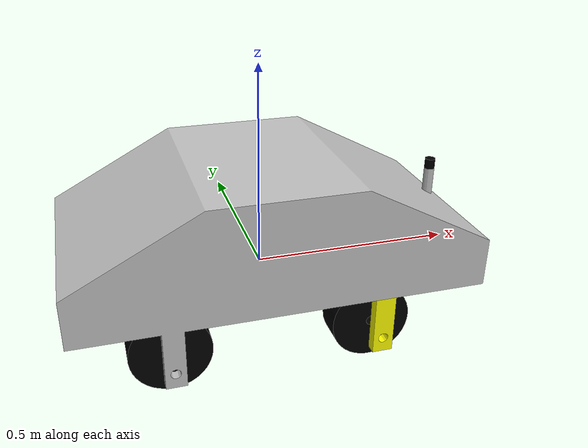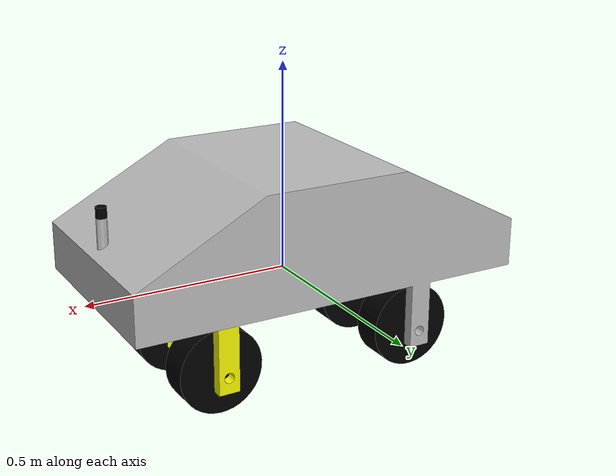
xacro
<?xml version="1.0" ?>
<robot
  name="car_robot" xmlns:xacro="http://ros.org/wiki/xacro">
  <xacro:macro name="body_color">
    <visual>
    <material>
        <ambient>0.5 0.5 0.5 1.0</ambient>
        <diffuse>0.5 0.5 0.5 1.0</diffuse>
        <specular>0.7 0.7 0.7 1.0</specular>
        <emissive>0 0 0 1.0</emissive>
    </material>
    </visual>
  </xacro:macro>
<gazebo reference="base_link">
    <xacro:body_color />
</gazebo>
  <xacro:macro name="fr_wheel_color">
    <visual>
    <material>
        <ambient>0 0 0 1.0</ambient>
        <diffuse>0 0 0 1.0</diffuse>
        <specular>0 0 0 1.0</specular>
        <emissive>0 0 0 1.0</emissive>
    </material>
    </visual>
  </xacro:macro>
<gazebo reference="front-right-wheel">
    <xacro:fr_wheel_color/>
</gazebo>
<xacro:macro name="fl_wheel_color">
    <visual>
    <material>
        <ambient>0 0 0 1.0</ambient>
        <diffuse>0 0 0 1.0</diffuse>
        <specular>0 0 0 1.0</specular>
        <emissive>0 0 0 1.0</emissive>
    </material>
    </visual>
  </xacro:macro>
<gazebo reference="front-left-wheel">
    <xacro:fl_wheel_color/>
</gazebo>
<xacro:macro name="rr_wheel_color">
    <visual>
    <material>
        <ambient>0 0 0 1.0</ambient>
        <diffuse>0 0 0 1.0</diffuse>
        <specular>0 0 0 1.0</specular>
        <emissive>0 0 0 1.0</emissive>
    </material>
    </visual>
  </xacro:macro>
<gazebo reference="rear-right-wheel">
    <xacro:rr_wheel_color/>
</gazebo>
<xacro:macro name="rl_wheel_color">
    <visual>
    <material>
        <ambient>0 0 0 1.0</ambient>
        <diffuse>0 0 0 1.0</diffuse>
        <specular>0 0 0 1.0</specular>
        <emissive>0 0 0 1.0</emissive>
    </material>
    </visual>
  </xacro:macro>
<gazebo reference="rear-left-wheel">
    <xacro:rl_wheel_color/>
</gazebo>
<xacro:macro name="Lidar">
<visual>
    <material>
        <ambient>0 0 0 1.0</ambient>
        <diffuse>0 0 0 1.0</diffuse>
        <specular>0 0 0 1.0</specular>
        <emissive>0 0 0 1.0</emissive>
    </material>
    </visual>
  </xacro:macro>
<gazebo reference="Lidar">
    <xacro:Lidar/>
</gazebo>
  <xacro:macro name="righthinge">
    <visual>
    <material>
        <ambient>0.8 0.558823529411765 0.1 1</ambient>
        <diffuse>0.8 0.558823529411765 0.1 1</diffuse>
        <specular>0.1 0.1 0.1 1</specular>
        <emissive>0 0 0 0</emissive>
    </material>
    </visual>
</xacro:macro>
<gazebo reference="front-right-hinge">
    <xacro:righthinge />
</gazebo>
  <xacro:macro name="left-hinge">
    <visual>
    <material>
        <ambient>0.8 0.558823529411765 0.1 1</ambient>
        <diffuse>0.8 0.558823529411765 0.1 1</diffuse>
        <specular>0.1 0.1 0.1 1</specular>
        <emissive>0 0 0 0</emissive>
    </material>
    </visual>
</xacro:macro>
<gazebo reference="front-left-hinge">
    <xacro:left-hinge />
</gazebo>

# Add this before base link
<link name="dummy_link"></link>

  <link
    name="base_link">
    <inertial>
      <origin
        xyz="-0.00590761615173888 8.73355505905299E-10 0.0651857188195396"
        rpy="0 0 0" />
      <mass
        value="40.2057306762447" />
      <inertia
        ixx="1.26964977918221"
        ixy="-1.56502914706543E-08"
        ixz="-0.0368531498128534"
        iyy="3.36078463885119"
        iyz="1.85572003306758E-12"
        izz="4.12740286196387" />
    </inertial>
    <visual>
      <origin
        xyz="0 0 0"
        rpy="0 0 0" />
      <geometry>
        <mesh
          filename="package://car_robot/meshes/base_link.STL" />
      </geometry>
      <material
        name="">
        <color
          rgba="0.752941176470588 0.752941176470588 0.752941176470588 1" />
      </material>
    </visual>
    <collision>
      <origin
        xyz="0 0 0"
        rpy="0 0 0" />
      <geometry>
        <mesh
          filename="package://car_robot/meshes/base_link.STL" />
      </geometry>
    </collision>
  </link>
  # Add this after base link
<joint name="dummy_joint" type="fixed">
    <origin rpy="0 0 0" xyz="0 0 0" />
    <parent link="dummy_link"/>
    <child link="base_link"/>
</joint>
  <link
    name="front-left-hinge">
    <inertial>
      <origin
        xyz="5.55111512312578E-17 2.77555756156289E-17 -0.118799628145585"
        rpy="0 0 0" />
      <mass
        value="0.633612488698204" />
      <inertia
        ixx="0.00421598497152854"
        ixy="2.499711540899E-05"
        ixz="1.39648971177733E-18"
        iyy="0.00246011467135765"
        iyz="-2.46632049893864E-19"
        izz="0.00202629416547586" />
    </inertial>
    <visual>
      <origin
        xyz="0 0 0"
        rpy="0 0 0" />
      <geometry>
        <mesh
          filename="package://car_robot/meshes/front-left-hinge.STL" />
      </geometry>
      <material
        name="">
        <color
          rgba="1 1 0 1" />
      </material>
    </visual>
    <collision>
      <origin
        xyz="0 0 0"
        rpy="0 0 0" />
      <geometry>
        <mesh
          filename="package://car_robot/meshes/front-left-hinge.STL" />
      </geometry>
    </collision>
  </link>
  <joint
    name="fl-hinge"
    type="revolute">
    <origin
      xyz="0.254 0.1397 0.0608"
      rpy="0 0 0" />
    <parent
      link="base_link" />
    <child
      link="front-left-hinge" />
    <axis
      xyz="0 0 -1" />
    <limit
      lower="-1"
      upper="1"
      effort="0"
      velocity="0" />
  </joint>
  <link
    name="front-left-wheel">
    <inertial>
      <origin
        xyz="-0.000542238634311243 -2.77555756156289E-17 -0.0380961412384963"
        rpy="0 0 0" />
      <mass
        value="2.43249992415545" />
      <inertia
        ixx="0.00755355776923952"
        ixy="1.88640504073853E-18"
        ixz="7.39771592248954E-05"
        iyy="0.00755250482076537"
        iyz="1.95246869510358E-18"
        izz="0.0127499292164544" />
    </inertial>
    <visual>
      <origin
        xyz="0 0 0"
        rpy="0 0 0" />
      <geometry>
        <mesh
          filename="package://car_robot/meshes/front-left-wheel.STL" />
      </geometry>
      <material
        name="">
        <color
          rgba="0 0 0 1" />
      </material>
    </visual>
    <collision>
      <origin
        xyz="0 0 0"
        rpy="0 0 0" />
      <geometry>
        <mesh
          filename="package://car_robot/meshes/front-left-wheel.STL" />
      </geometry>
    </collision>
  </link>
  <joint
    name="fl-wheel"
    type="continuous">
    <origin
      xyz="-0.000542238634311021 0.0380961412384964 -0.2005"
      rpy="1.5707963267949 0 -3.14159265358979" />
    <parent
      link="front-left-hinge" />
    <child
      link="front-left-wheel" />
    <axis
      xyz="-0.0142319851525261 0 -0.999898720170507" />
  </joint>
  <link
    name="front-right-hinge">
    <inertial>
      <origin
        xyz="-5.55111512312578E-17 0 -0.118799628145585"
        rpy="0 0 0" />
      <mass
        value="0.633612488698205" />
      <inertia
        ixx="0.00421634076613872"
        ixy="3.80852095203233E-19"
        ixz="-2.1435307693139E-21"
        iyy="0.00245975887674748"
        iyz="-1.06880068014722E-18"
        izz="0.00202629416547586" />
    </inertial>
    <visual>
      <origin
        xyz="0 0 0"
        rpy="0 0 0" />
      <geometry>
        <mesh
          filename="package://car_robot/meshes/front-right-hinge.STL" />
      </geometry>
      <material
        name="">
        <color
          rgba="1 1 0 1" />
      </material>
    </visual>
    <collision>
      <origin
        xyz="0 0 0"
        rpy="0 0 0" />
      <geometry>
        <mesh
          filename="package://car_robot/meshes/front-right-hinge.STL" />
      </geometry>
    </collision>
  </link>
  <joint
    name="fr-hinge"
    type="revolute">
    <origin
      xyz="0.254 -0.1397 0.0608"
      rpy="0 0 0" />
    <parent
      link="base_link" />
    <child
      link="front-right-hinge" />
    <axis
      xyz="0 0 -1" />
    <limit
      lower="-1"
      upper="1"
      effort="0"
      velocity="0" />
  </joint>
  <link
    name="front-right-wheel">
    <inertial>
      <origin
        xyz="-5.55111512312578E-17 2.77555756156289E-17 -0.0381"
        rpy="0 0 0" />
      <mass
        value="2.43249992415545" />
      <inertia
        ixx="0.00755250482076537"
        ixy="6.00508507818468E-19"
        ixz="8.35496005193151E-19"
        iyy="0.00755250482076537"
        iyz="-3.98615026528919E-18"
        izz="0.0127509821649285" />
    </inertial>
    <visual>
      <origin
        xyz="0 0 0"
        rpy="0 0 0" />
      <geometry>
        <mesh
          filename="package://car_robot/meshes/front-right-wheel.STL" />
      </geometry>
      <material
        name="">
        <color
          rgba="0 0 0 1" />
      </material>
    </visual>
    <collision>
      <origin
        xyz="0 0 0"
        rpy="0 0 0" />
      <geometry>
        <mesh
          filename="package://car_robot/meshes/front-right-wheel.STL" />
      </geometry>
    </collision>
  </link>
  <joint
    name="fr-wheel"
    type="continuous">
    <origin
      xyz="0 -0.0381 -0.2005"
      rpy="1.5707963267949 0 0" />
    <parent
      link="front-right-hinge" />
    <child
      link="front-right-wheel" />
    <axis
      xyz="0 0 -1" />
  </joint>
  <link
    name="rear-left-wheel">
    <inertial>
      <origin
        xyz="0 0 -0.0381"
        rpy="0 0 0" />
      <mass
        value="2.43249992415545" />
      <inertia
        ixx="0.00755250482076536"
        ixy="-8.23812994843201E-19"
        ixz="-1.50602458021814E-19"
        iyy="0.00755250482076536"
        iyz="2.88296133927474E-19"
        izz="0.0127509821649285" />
    </inertial>
    <visual>
      <origin
        xyz="0 0 0"
        rpy="0 0 0" />
      <geometry>
        <mesh
          filename="package://car_robot/meshes/rear-left-wheel.STL" />
      </geometry>
      <material
        name="">
        <color
          rgba="0 0 0 1" />
      </material>
    </visual>
    <collision>
      <origin
        xyz="0 0 0"
        rpy="0 0 0" />
      <geometry>
        <mesh
          filename="package://car_robot/meshes/rear-left-wheel.STL" />
      </geometry>
    </collision>
  </link>
  <joint
    name="rl-wheel"
    type="continuous">
    <origin
      xyz="-0.254 0.1778 -0.1397"
      rpy="1.5708 0 3.1416" />
    <parent
      link="base_link" />
    <child
      link="rear-left-wheel" />
    <axis
      xyz="0 0 -1" />
  </joint>
  <link
    name="rear-right-wheel">
    <inertial>
      <origin
        xyz="0 0 -0.0381"
        rpy="0 0 0" />
      <mass
        value="2.43249992415545" />
      <inertia
        ixx="0.00755250482076537"
        ixy="1.16151947225978E-18"
        ixz="3.90126123152596E-19"
        iyy="0.00755250482076537"
        iyz="7.17453761935092E-19"
        izz="0.0127509821649285" />
    </inertial>
    <visual>
      <origin
        xyz="0 0 0"
        rpy="0 0 0" />
      <geometry>
        <mesh
          filename="package://car_robot/meshes/rear-right-wheel.STL" />
      </geometry>
      <material
        name="">
        <color
          rgba="0 0 0 1" />
      </material>
    </visual>
    <collision>
      <origin
        xyz="0 0 0"
        rpy="0 0 0" />
      <geometry>
        <mesh
          filename="package://car_robot/meshes/rear-right-wheel.STL" />
      </geometry>
    </collision>
  </link>
  <joint
    name="rr-wheel"
    type="continuous">
    <origin
      xyz="-0.254 -0.1778 -0.1397"
      rpy="1.5708 0 0" />
    <parent
      link="base_link" />
    <child
      link="rear-right-wheel" />
    <axis
      xyz="0 0 -1" />
  </joint>
  <link
    name="Lidar">
    <inertial>
      <origin
        xyz="5.55111512312578E-17 -1.60727870924178E-18 -0.0127"
        rpy="0 0 0" />
      <mass
        value="0.0128703699690764" />
      <inertia
        ixx="1.21091948384887E-06"
        ixy="-5.87747175411144E-39"
        ixz="4.01153705072005E-39"
        iyy="1.21091948384887E-06"
        iyz="-7.78263594347942E-38"
        izz="1.03793098615617E-06" />
    </inertial>
    <visual>
      <origin
        xyz="0 0 0"
        rpy="0 0 0" />
      <geometry>
        <mesh
          filename="package://car_robot/meshes/Lidar.STL" />
      </geometry>
      <material
        name="">
        <color
          rgba="0 0 0 1" />
      </material>
    </visual>
    <collision>
      <origin
        xyz="0 0 0"
        rpy="0 0 0" />
      <geometry>
        <mesh
          filename="package://car_robot/meshes/Lidar.STL" />
      </geometry>
    </collision>
  </link>
  <joint
    name="laser"
    type="fixed">
    <origin
      xyz="0.45 0 0.2262"
      rpy="0 0 0" />
    <parent
      link="base_link" />
    <child
      link="Lidar" />
    <axis
      xyz="0 0 0" />
  </joint>
     <ros2_control name="GazeboSystem" type="system">
 <hardware>
     <plugin>gazebo_ros2_control/GazeboSystem</plugin>
 </hardware>
 # Velocity Controllers

 <joint name="rr-wheel">
     <command_interface name="velocity">
         <param name="min">-1000.0</param>
         <param name="max">1000.0</param>
     </command_interface>
     <state_interface name="position"/>
     <state_interface name="velocity"/>
 </joint>
 <joint name="rl-wheel">
     <command_interface name="velocity">
         <param name="min">-1000.0</param>
         <param name="max">1000.0</param>
     </command_interface>
     <state_interface name="position"/>
     <state_interface name="velocity"/>
 </joint>
  <joint name="fr-wheel">
     <command_interface name="velocity">
         <param name="min">-1000.0</param>
         <param name="max">1000.0</param>
     </command_interface>
     <state_interface name="position"/>
     <state_interface name="velocity"/>
 </joint>
  <joint name="fl-wheel">
     <command_interface name="velocity">
         <param name="min">-1000.0</param>
         <param name="max">1000.0</param>
     </command_interface>
     <state_interface name="position"/>
     <state_interface name="velocity"/>
 </joint>
# Position Controller
 <joint name="fl-hinge">
     <command_interface name="position">
         <param name="min">-3.14</param>
         <param name="max">3.14</param>
     </command_interface>
     <state_interface name="position"/>
     <state_interface name="velocity"/>
 </joint>
 <joint name="fr-hinge">
     <command_interface name="position">
         <param name="min">-3.14</param>
         <param name="max">3.14</param>
     </command_interface>
     <state_interface name="position"/>
     <state_interface name="velocity"/>
 </joint>
 </ros2_control>
<gazebo>
    <plugin filename="libgazebo_ros2_control.so" name="gazebo_ros2_control">
        <parameters>$(find car_robot)/config/control.yaml</parameters>
    </plugin>
</gazebo>
<gazebo reference="Lidar">
  <sensor name="lidar" type="ray">
    <pose>0.0 0.0 0.0 0 0 0</pose>
    <always_on>true</always_on>
    <visualize>true</visualize>
    <update_rate>5</update_rate>
    <ray>
      <scan>
        <horizontal>
          <samples>360</samples>
          <resolution>1.00000</resolution>
          <min_angle>0.000000</min_angle>
          <max_angle>6.280000</max_angle>
        </horizontal>
      </scan>
      <range>
        <min>0.120000</min>
        <max>3.5</max>
        <resolution>0.015000</resolution>
      </range>
      <noise>
        <type>gaussian</type>
        <mean>0.0</mean>
        <stddev>0.01</stddev>
      </noise>
    </ray>
    <plugin name="scan" filename="libgazebo_ros_ray_sensor.so">
      <ros>
        <remapping>~/out:=scan</remapping>
      </ros>
      <output_type>sensor_msgs/LaserScan</output_type>
      <frame_name>Lidar</frame_name>
    </plugin>
  </sensor>
  </gazebo>
  #IMU
  <gazebo reference="base_link">
  <gravity>true</gravity>
  <sensor name="imu_sensor" type="imu">
    <always_on>true</always_on>
    <update_rate>100</update_rate>
    <visualize>true</visualize>
    <topic>__default_topic__</topic>
    <plugin filename="libgazebo_ros_imu_sensor.so" name="imu_plugin">
      <topicName>imu</topicName>
      <bodyName>base_link</bodyName>
      <updateRateHZ>10.0</updateRateHZ>
      <gaussianNoise>0.0</gaussianNoise>
      <xyzOffset>0 0 0</xyzOffset>
      <rpyOffset>0 0 0</rpyOffset>
      <frameName>base_link</frameName>
      <initialOrientationAsReference>false</initialOrientationAsReference>
    </plugin>
    <pose>0 0 0 0 0 0</pose>
  </sensor>
</gazebo>
</robot>
